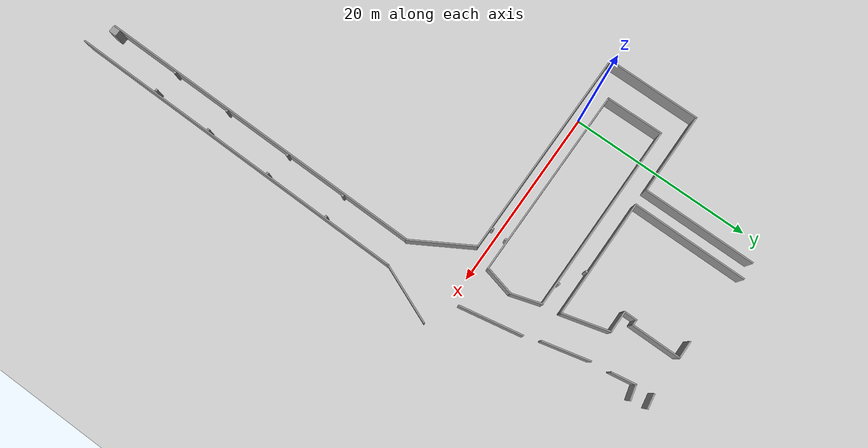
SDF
<sdf version="1.6">
 <world name="default">
  <model name="ground_plane">
   <static>1</static>
   <link name="link">
    <collision name="collision">
     <geometry><plane><normal>0 0 1</normal><size>100 100</size></plane></geometry>
     <surface><friction><ode><mu>100</mu><mu2>50</mu2></ode></friction></surface>
    </collision>
    <visual name="visual">
     <cast_shadows>0</cast_shadows>
     <geometry><plane><normal>0 0 1</normal><size>100 100</size></plane></geometry>
     <material>
      <script><uri>file://media/materials/scripts/gazebo.material</uri><name>Gazebo/Grey</name></script>
     </material>
    </visual>
   </link>
  </model>
  <model name="CMU">
   <pose>62.2844 43.535 0 0 -0 0</pose>
   <link name="Wall_1">
    <collision name="Wall_1_Collision">
     <geometry><box><size>23.5 0.15 2.5</size></box></geometry>
     <pose>0 0 1.25 0 -0 0</pose>
    </collision>
    <visual name="Wall_1_Visual">
     <pose>0 0 1.25 0 -0 0</pose>
     <geometry><box><size>23.5 0.15 2.5</size></box></geometry>
     <material>
      <script><uri>file://media/materials/scripts/gazebo.material</uri><name>Gazebo/Grey</name></script>
      <ambient>1 1 1 1</ambient>
     </material>
    </visual>
    <pose>-57.0241 -44.4197 0 0 -0 3.14159</pose>
   </link>
   <link name="Wall_100">
    <collision name="Wall_100_Collision">
     <geometry><box><size>21.25 0.15 2.5</size></box></geometry>
     <pose>0 0 1.25 0 -0 0</pose>
    </collision>
    <visual name="Wall_100_Visual">
     <pose>0 0 1.25 0 -0 0</pose>
     <geometry><box><size>21.25 0.15 2.5</size></box></geometry>
     <material>
      <script><uri>file://media/materials/scripts/gazebo.material</uri><name>Gazebo/Grey</name></script>
      <ambient>1 1 1 1</ambient>
     </material>
    </visual>
    <pose>-54.7083 -42.3708 0 0 -0 0</pose>
   </link>
   <link name="Wall_101">
    <collision name="Wall_101_Collision">
     <geometry><box><size>3.37379 0.15 2.5</size></box></geometry>
     <pose>0 0 1.25 0 -0 0</pose>
    </collision>
    <visual name="Wall_101_Visual">
     <pose>0 0 1.25 0 -0 0</pose>
     <geometry><box><size>3.37379 0.15 2.5</size></box></geometry>
     <material>
      <script><uri>file://media/materials/scripts/gazebo.material</uri><name>Gazebo/Grey</name></script>
      <ambient>1 1 1 1</ambient>
     </material>
    </visual>
    <pose>-43.7804 -40.7573 0 0 -0 1.33414</pose>
   </link>
   <link name="Wall_102">
    <collision name="Wall_102_Collision">
     <geometry><box><size>3.40257 0.15 2.5</size></box></geometry>
     <pose>0 0 1.25 0 -0 0</pose>
    </collision>
    <visual name="Wall_102_Visual">
     <pose>0 0 1.25 0 -0 0</pose>
     <geometry><box><size>3.40257 0.15 2.5</size></box></geometry>
     <material>
      <script><uri>file://media/materials/scripts/gazebo.material</uri><name>Gazebo/Grey</name></script>
      <ambient>1 1 1 1</ambient>
     </material>
    </visual>
    <pose>-43.8858 -37.6375 0 0 -0 1.87253</pose>
   </link>
   <link name="Wall_103">
    <collision name="Wall_103_Collision">
     <geometry><box><size>21.0858 0.15 2.5</size></box></geometry>
     <pose>0 0 1.25 0 -0 0</pose>
    </collision>
    <visual name="Wall_103_Visual">
     <pose>0 0 1.25 0 -0 0</pose>
     <geometry><box><size>21.0858 0.15 2.5</size></box></geometry>
     <material>
      <script><uri>file://media/materials/scripts/gazebo.material</uri><name>Gazebo/Grey</name></script>
      <ambient>1 1 1 1</ambient>
     </material>
    </visual>
    <pose>-54.837 -36.0847 0 0 -0 3.14159</pose>
   </link>
   <link name="Wall_108">
    <collision name="Wall_108_Collision">
     <geometry><box><size>6.95877 0.15 2.5</size></box></geometry>
     <pose>0 0 1.25 0 -0 0</pose>
    </collision>
    <visual name="Wall_108_Visual">
     <pose>0 0 1.25 0 -0 0</pose>
     <geometry><box><size>6.95877 0.15 2.5</size></box></geometry>
     <material>
      <script><uri>file://media/materials/scripts/gazebo.material</uri><name>Gazebo/Grey</name></script>
      <ambient>1 1 1 1</ambient>
     </material>
    </visual>
    <pose>-40.1556 -39.2515 0 0 0 -1.38616</pose>
   </link>
   <link name="Wall_110">
    <collision name="Wall_110_Collision">
     <geometry><box><size>5.17157 0.15 2.5</size></box></geometry>
     <pose>0 0 1.25 0 -0 0</pose>
    </collision>
    <visual name="Wall_110_Visual">
     <pose>0 0 1.25 0 -0 0</pose>
     <geometry><box><size>5.17157 0.15 2.5</size></box></geometry>
     <material>
      <script><uri>file://media/materials/scripts/gazebo.material</uri><name>Gazebo/Grey</name></script>
      <ambient>1 1 1 1</ambient>
     </material>
    </visual>
    <pose>-41.9731 -31.6882 0 0 0 -1.33705</pose>
   </link>
   <link name="Wall_2">
    <collision name="Wall_2_Collision">
     <geometry><box><size>10.5 0.15 2.5</size></box></geometry>
     <pose>0 0 1.25 0 -0 0</pose>
    </collision>
    <visual name="Wall_2_Visual">
     <pose>0 0 1.25 0 -0 0</pose>
     <geometry><box><size>10.5 0.15 2.5</size></box></geometry>
     <material>
      <script><uri>file://media/materials/scripts/gazebo.material</uri><name>Gazebo/Grey</name></script>
      <ambient>1 1 1 1</ambient>
     </material>
    </visual>
    <pose>-68.6991 -39.2447 0 0 -0 1.5708</pose>
   </link>
   <link name="Wall_226">
    <collision name="Wall_226_Collision">
     <geometry><box><size>7.24322 0.15 2.5</size></box></geometry>
     <pose>0 0 1.25 0 -0 0</pose>
    </collision>
    <visual name="Wall_226_Visual">
     <pose>0 0 1.25 0 -0 0</pose>
     <geometry><box><size>7.24322 0.15 2.5</size></box></geometry>
     <material>
      <script><uri>file://media/materials/scripts/gazebo.material</uri><name>Gazebo/Grey</name></script>
      <ambient>1 1 1 1</ambient>
     </material>
    </visual>
    <pose>-43.5508 -47.4766 0 0 0 -1.03906</pose>
   </link>
   <link name="Wall_227">
    <collision name="Wall_227_Collision">
     <geometry><box><size>37.1315 0.15 2.5</size></box></geometry>
     <pose>0 0 1.25 0 -0 0</pose>
    </collision>
    <visual name="Wall_227_Visual">
     <pose>0 0 1.25 0 -0 0</pose>
     <geometry><box><size>37.1315 0.15 2.5</size></box></geometry>
     <material>
      <script><uri>file://media/materials/scripts/gazebo.material</uri><name>Gazebo/Grey</name></script>
      <ambient>1 1 1 1</ambient>
     </material>
    </visual>
    <pose>-42.0602 -69.0227 0 0 0 -1.58411</pose>
   </link>
   <link name="Wall_229">
    <collision name="Wall_229_Collision">
     <geometry><box><size>6.74296 0.15 2.5</size></box></geometry>
     <pose>0 0 1.25 0 -0 0</pose>
    </collision>
    <visual name="Wall_229_Visual">
     <pose>0 0 1.25 0 -0 0</pose>
     <geometry><box><size>6.74296 0.15 2.5</size></box></geometry>
     <material>
      <script><uri>file://media/materials/scripts/gazebo.material</uri><name>Gazebo/Grey</name></script>
      <ambient>1 1 1 1</ambient>
     </material>
    </visual>
    <pose>-37.4764 -47.4264 0 0 0 -1.96343</pose>
   </link>
   <link name="Wall_230">
    <collision name="Wall_230_Collision">
     <geometry><box><size>38.6696 0.15 2.5</size></box></geometry>
     <pose>0 0 1.25 0 -0 0</pose>
    </collision>
    <visual name="Wall_230_Visual">
     <pose>0 0 1.25 0 -0 0</pose>
     <geometry><box><size>38.6696 0.15 2.5</size></box></geometry>
     <material>
      <script><uri>file://media/materials/scripts/gazebo.material</uri><name>Gazebo/Grey</name></script>
      <ambient>1 1 1 1</ambient>
     </material>
    </visual>
    <pose>-39.0146 -69.7302 0 0 0 -1.58517</pose>
   </link>
   <link name="Wall_3">
    <collision name="Wall_3_Collision">
     <geometry><box><size>9.25 0.15 2.5</size></box></geometry>
     <pose>0 0 1.25 0 -0 0</pose>
    </collision>
    <visual name="Wall_3_Visual">
     <pose>0 0 1.25 0 -0 0</pose>
     <geometry><box><size>9.25 0.15 2.5</size></box></geometry>
     <material>
      <script><uri>file://media/materials/scripts/gazebo.material</uri><name>Gazebo/Grey</name></script>
      <ambient>1 1 1 1</ambient>
     </material>
    </visual>
    <pose>-64.1491 -34.0697 0 0 -0 0</pose>
   </link>
   <link name="Wall_4">
    <collision name="Wall_4_Collision">
     <geometry><box><size>12.5 0.15 2.5</size></box></geometry>
     <pose>0 0 1.25 0 -0 0</pose>
    </collision>
    <visual name="Wall_4_Visual">
     <pose>0 0 1.25 0 -0 0</pose>
     <geometry><box><size>12.5 0.15 2.5</size></box></geometry>
     <material>
      <script><uri>file://media/materials/scripts/gazebo.material</uri><name>Gazebo/Grey</name></script>
      <ambient>1 1 1 1</ambient>
     </material>
    </visual>
    <pose>-59.5991 -27.8947 0 0 -0 1.5708</pose>
   </link>
   <link name="Wall_57">
    <collision name="Wall_57_Collision">
     <geometry><box><size>2.69694 0.15 2.5</size></box></geometry>
     <pose>0 0 1.25 0 -0 0</pose>
    </collision>
    <visual name="Wall_57_Visual">
     <pose>0 0 1.25 0 -0 0</pose>
     <geometry><box><size>2.69694 0.15 2.5</size></box></geometry>
     <material>
      <script><uri>file://media/materials/scripts/gazebo.material</uri><name>Gazebo/Grey</name></script>
      <ambient>1 1 1 1</ambient>
     </material>
    </visual>
    <pose>-43.0321 -25.7734 0 0 -0 1.73595</pose>
   </link>
   <link name="Wall_58">
    <collision name="Wall_58_Collision">
     <geometry><box><size>1.72976 0.15 2.5</size></box></geometry>
     <pose>0 0 1.25 0 -0 0</pose>
    </collision>
    <visual name="Wall_58_Visual">
     <pose>0 0 1.25 0 -0 0</pose>
     <geometry><box><size>1.72976 0.15 2.5</size></box></geometry>
     <material>
      <script><uri>file://media/materials/scripts/gazebo.material</uri><name>Gazebo/Grey</name></script>
      <ambient>1 1 1 1</ambient>
     </material>
    </visual>
    <pose>-42.4738 -24.3312 0 0 -0 0.237836</pose>
   </link>
   <link name="Wall_60">
    <collision name="Wall_60_Collision">
     <geometry><box><size>1.61088 0.15 2.5</size></box></geometry>
     <pose>0 0 1.25 0 -0 0</pose>
    </collision>
    <visual name="Wall_60_Visual">
     <pose>0 0 1.25 0 -0 0</pose>
     <geometry><box><size>1.61088 0.15 2.5</size></box></geometry>
     <material>
      <script><uri>file://media/materials/scripts/gazebo.material</uri><name>Gazebo/Grey</name></script>
      <ambient>1 1 1 1</ambient>
     </material>
    </visual>
    <pose>-42.753 -22.4935 0 0 -0 0.159913</pose>
   </link>
   <link name="Wall_86">
    <collision name="Wall_86_Collision">
     <geometry><box><size>12.7071 0.15 2.5</size></box></geometry>
     <pose>0 0 1.25 0 -0 0</pose>
    </collision>
    <visual name="Wall_86_Visual">
     <pose>0 0 1.25 0 -0 0</pose>
     <geometry><box><size>12.7071 0.15 2.5</size></box></geometry>
     <material>
      <script><uri>file://media/materials/scripts/gazebo.material</uri><name>Gazebo/Grey</name></script>
      <ambient>1 1 1 1</ambient>
     </material>
    </visual>
    <pose>-57.7821 -27.8544 0 0 0 -1.57276</pose>
   </link>
   <link name="Wall_87">
    <collision name="Wall_87_Collision">
     <geometry><box><size>13.25 0.15 2.5</size></box></geometry>
     <pose>0 0 1.25 0 -0 0</pose>
    </collision>
    <visual name="Wall_87_Visual">
     <pose>0 0 1.25 0 -0 0</pose>
     <geometry><box><size>13.25 0.15 2.5</size></box></geometry>
     <material>
      <script><uri>file://media/materials/scripts/gazebo.material</uri><name>Gazebo/Grey</name></script>
      <ambient>1 1 1 1</ambient>
     </material>
    </visual>
    <pose>-51.2444 -34.1329 0 0 -0 0</pose>
   </link>
   <link name="Wall_88">
    <collision name="Wall_88_Collision">
     <geometry><box><size>5.25 0.15 2.5</size></box></geometry>
     <pose>0 0 1.25 0 -0 0</pose>
    </collision>
    <visual name="Wall_88_Visual">
     <pose>0 0 1.25 0 -0 0</pose>
     <geometry><box><size>5.25 0.15 2.5</size></box></geometry>
     <material>
      <script><uri>file://media/materials/scripts/gazebo.material</uri><name>Gazebo/Grey</name></script>
      <ambient>1 1 1 1</ambient>
     </material>
    </visual>
    <pose>-45.3544 -31.6698 0 0 -0 1.8326</pose>
   </link>
   <link name="Wall_89">
    <collision name="Wall_89_Collision">
     <geometry><box><size>2.5 0.15 2.5</size></box></geometry>
     <pose>0 0 1.25 0 -0 0</pose>
    </collision>
    <visual name="Wall_89_Visual">
     <pose>0 0 1.25 0 -0 0</pose>
     <geometry><box><size>2.5 0.15 2.5</size></box></geometry>
     <material>
      <script><uri>file://media/materials/scripts/gazebo.material</uri><name>Gazebo/Grey</name></script>
      <ambient>1 1 1 1</ambient>
     </material>
    </visual>
    <pose>-47.1894 -29.2067 0 0 -0 3.14159</pose>
   </link>
   <link name="Wall_90">
    <collision name="Wall_90_Collision">
     <geometry><box><size>1.5 0.15 2.5</size></box></geometry>
     <pose>0 0 1.25 0 -0 0</pose>
    </collision>
    <visual name="Wall_90_Visual">
     <pose>0 0 1.25 0 -0 0</pose>
     <geometry><box><size>1.5 0.15 2.5</size></box></geometry>
     <material>
      <script><uri>file://media/materials/scripts/gazebo.material</uri><name>Gazebo/Grey</name></script>
      <ambient>1 1 1 1</ambient>
     </material>
    </visual>
    <pose>-48.3644 -28.5317 0 0 -0 1.5708</pose>
   </link>
   <link name="Wall_91">
    <collision name="Wall_91_Collision">
     <geometry><box><size>0.75 0.15 2.5</size></box></geometry>
     <pose>0 0 1.25 0 -0 0</pose>
    </collision>
    <visual name="Wall_91_Visual">
     <pose>0 0 1.25 0 -0 0</pose>
     <geometry><box><size>0.75 0.15 2.5</size></box></geometry>
     <material>
      <script><uri>file://media/materials/scripts/gazebo.material</uri><name>Gazebo/Grey</name></script>
      <ambient>1 1 1 1</ambient>
     </material>
    </visual>
    <pose>-48.0644 -27.8567 0 0 -0 0</pose>
   </link>
   <link name="Wall_92">
    <collision name="Wall_92_Collision">
     <geometry><box><size>5.5 0.15 2.5</size></box></geometry>
     <pose>0 0 1.25 0 -0 0</pose>
    </collision>
    <visual name="Wall_92_Visual">
     <pose>0 0 1.25 0 -0 0</pose>
     <geometry><box><size>5.5 0.15 2.5</size></box></geometry>
     <material>
      <script><uri>file://media/materials/scripts/gazebo.material</uri><name>Gazebo/Grey</name></script>
      <ambient>1 1 1 1</ambient>
     </material>
    </visual>
    <pose>-47.7644 -25.1817 0 0 -0 1.5708</pose>
   </link>
   <link name="Wall_93">
    <collision name="Wall_93_Collision">
     <geometry><box><size>2 0.15 2.5</size></box></geometry>
     <pose>0 0 1.25 0 -0 0</pose>
    </collision>
    <visual name="Wall_93_Visual">
     <pose>0 0 1.25 0 -0 0</pose>
     <geometry><box><size>2 0.15 2.5</size></box></geometry>
     <material>
      <script><uri>file://media/materials/scripts/gazebo.material</uri><name>Gazebo/Grey</name></script>
      <ambient>1 1 1 1</ambient>
     </material>
    </visual>
    <pose>-48.6894 -22.5067 0 0 -0 3.14159</pose>
   </link>
   <link name="Wall_99">
    <collision name="Wall_99_Collision">
     <geometry><box><size>6.38974 0.15 2.5</size></box></geometry>
     <pose>0 0 1.25 0 -0 0</pose>
    </collision>
    <visual name="Wall_99_Visual">
     <pose>0 0 1.25 0 -0 0</pose>
     <geometry><box><size>6.38974 0.15 2.5</size></box></geometry>
     <material>
      <script><uri>file://media/materials/scripts/gazebo.material</uri><name>Gazebo/Grey</name></script>
      <ambient>1 1 1 1</ambient>
     </material>
    </visual>
    <pose>-65.2816 -39.2045 0 0 0 -1.56334</pose>
   </link>
   <static>1</static>
  </model>
  <model name="unit_box_0_clone">
   <pose>20.4656 -21.6522 1.07512 0 0 -0.013448</pose>
   <link name="link">
    <inertial>
     <mass>1</mass>
     <inertia>
      <ixx>0.166667</ixx>
      <ixy>0</ixy>
      <ixz>0</ixz>
      <iyy>0.166667</iyy>
      <iyz>0</iyz>
      <izz>0.166667</izz>
     </inertia>
    </inertial>
    <collision name="collision"><geometry><box><size>0.230557 0.245067 2.15023</size></box></geometry></collision>
    <visual name="visual">
     <geometry><box><size>0.230557 0.245067 2.15023</size></box></geometry>
     <material>
      <script><name>Gazebo/Grey</name><uri>file://media/materials/scripts/gazebo.material</uri></script>
     </material>
    </visual>
   </link>
  </model>
  <model name="unit_box_0_clone_clone">
   <pose>20.5583 -14.6849 1.07512 0 0 -0.013313</pose>
   <link name="link">
    <inertial>
     <mass>1</mass>
     <inertia>
      <ixx>0.166667</ixx>
      <ixy>0</ixy>
      <ixz>0</ixz>
      <iyy>0.166667</iyy>
      <iyz>0</iyz>
      <izz>0.166667</izz>
     </inertia>
    </inertial>
    <collision name="collision"><geometry><box><size>0.230557 0.245067 2.15023</size></box></geometry></collision>
    <visual name="visual">
     <geometry><box><size>0.230557 0.245067 2.15023</size></box></geometry>
     <material>
      <script><name>Gazebo/Grey</name><uri>file://media/materials/scripts/gazebo.material</uri></script>
     </material>
    </visual>
   </link>
  </model>
  <model name="unit_box_0_clone_clone_0">
   <pose>20.4259 -43.6681 1.25089 0 2e-06 1.5608</pose>
   <link name="link">
    <inertial>
     <mass>1</mass>
     <inertia>
      <ixx>0.166667</ixx>
      <ixy>0</ixy>
      <ixz>0</ixz>
      <iyy>0.166667</iyy>
      <iyz>0</iyz>
      <izz>0.166667</izz>
     </inertia>
    </inertial>
    <collision name="collision"><geometry><box><size>0.865018 0.727249 2.50177</size></box></geometry></collision>
    <visual name="visual">
     <geometry><box><size>0.865018 0.727249 2.50177</size></box></geometry>
     <material>
      <script><name>Gazebo/Grey</name><uri>file://media/materials/scripts/gazebo.material</uri></script>
     </material>
    </visual>
   </link>
  </model>
  <model name="unit_box_0_clone_clone_1">
   <pose>20.3861 -29.3621 1.07512 2e-06 1e-06 -0.013266</pose>
   <link name="link">
    <inertial>
     <mass>1</mass>
     <inertia>
      <ixx>0.166667</ixx>
      <ixy>0</ixy>
      <ixz>0</ixz>
      <iyy>0.166667</iyy>
      <iyz>0</iyz>
      <izz>0.166667</izz>
     </inertia>
    </inertial>
    <collision name="collision"><geometry><box><size>0.230557 0.245067 2.15023</size></box></geometry></collision>
    <visual name="visual">
     <geometry><box><size>0.230557 0.245067 2.15023</size></box></geometry>
     <material>
      <script><name>Gazebo/Grey</name><uri>file://media/materials/scripts/gazebo.material</uri></script>
     </material>
    </visual>
   </link>
  </model>
  <model name="unit_box_0_clone_clone_2">
   <pose>23.2241 -14.7845 1.07512 3e-06 -4e-06 -0.012835</pose>
   <link name="link">
    <inertial>
     <mass>1</mass>
     <inertia>
      <ixx>0.166667</ixx>
      <ixy>0</ixy>
      <ixz>0</ixz>
      <iyy>0.166667</iyy>
      <iyz>0</iyz>
      <izz>0.166667</izz>
     </inertia>
    </inertial>
    <collision name="collision"><geometry><box><size>0.230557 0.245067 2.15023</size></box></geometry></collision>
    <visual name="visual">
     <geometry><box><size>0.230557 0.245067 2.15023</size></box></geometry>
     <material>
      <script><name>Gazebo/Grey</name><uri>file://media/materials/scripts/gazebo.material</uri></script>
     </material>
    </visual>
   </link>
  </model>
  <model name="unit_box_0_clone_clone_3">
   <pose>23.1307 -22.1108 1.07512 -4e-06 7e-06 -0.012958</pose>
   <link name="link">
    <inertial>
     <mass>1</mass>
     <inertia>
      <ixx>0.166667</ixx>
      <ixy>0</ixy>
      <ixz>0</ixz>
      <iyy>0.166667</iyy>
      <iyz>0</iyz>
      <izz>0.166667</izz>
     </inertia>
    </inertial>
    <collision name="collision"><geometry><box><size>0.230557 0.245067 2.15023</size></box></geometry></collision>
    <visual name="visual">
     <geometry><box><size>0.230557 0.245067 2.15023</size></box></geometry>
     <material>
      <script><name>Gazebo/Grey</name><uri>file://media/materials/scripts/gazebo.material</uri></script>
     </material>
    </visual>
   </link>
  </model>
  <model name="unit_box_0_clone_clone_4">
   <pose>23.0294 -29.6629 1.07512 6e-06 -0 -0.012684</pose>
   <link name="link">
    <inertial>
     <mass>1</mass>
     <inertia>
      <ixx>0.166667</ixx>
      <ixy>0</ixy>
      <ixz>0</ixz>
      <iyy>0.166667</iyy>
      <iyz>0</iyz>
      <izz>0.166667</izz>
     </inertia>
    </inertial>
    <collision name="collision"><geometry><box><size>0.230557 0.245067 2.15023</size></box></geometry></collision>
    <visual name="visual">
     <geometry><box><size>0.230557 0.245067 2.15023</size></box></geometry>
     <material>
      <script><name>Gazebo/Grey</name><uri>file://media/materials/scripts/gazebo.material</uri></script>
     </material>
    </visual>
   </link>
  </model>
  <model name="unit_box_0_clone_clone_5">
   <pose>22.8191 -36.4465 1.07512 0 -4e-06 -0.013699</pose>
   <link name="link">
    <inertial>
     <mass>1</mass>
     <inertia>
      <ixx>0.166667</ixx>
      <ixy>0</ixy>
      <ixz>0</ixz>
      <iyy>0.166667</iyy>
      <iyz>0</iyz>
      <izz>0.166667</izz>
     </inertia>
    </inertial>
    <collision name="collision"><geometry><box><size>0.230557 0.245067 2.15023</size></box></geometry></collision>
    <visual name="visual">
     <geometry><box><size>0.230557 0.245067 2.15023</size></box></geometry>
     <material>
      <script><name>Gazebo/Grey</name><uri>file://media/materials/scripts/gazebo.material</uri></script>
     </material>
    </visual>
   </link>
  </model>
  <model name="unit_box_0_clone_clone_6">
   <pose>20.2736 -36.0687 1.07512 0 0 -0.013313</pose>
   <link name="link">
    <inertial>
     <mass>1</mass>
     <inertia>
      <ixx>0.166667</ixx>
      <ixy>0</ixy>
      <ixz>0</ixz>
      <iyy>0.166667</iyy>
      <iyz>0</iyz>
      <izz>0.166667</izz>
     </inertia>
    </inertial>
    <collision name="collision"><geometry><box><size>0.230557 0.245067 2.15023</size></box></geometry></collision>
    <visual name="visual">
     <geometry><box><size>0.230557 0.245067 2.15023</size></box></geometry>
     <material>
      <script><name>Gazebo/Grey</name><uri>file://media/materials/scripts/gazebo.material</uri></script>
     </material>
    </visual>
   </link>
  </model>
  <model name="unit_box_0_clone_clone_18">
   <pose>12.769 9.19181 1.07512 0 0 -0.013413</pose>
   <link name="link">
    <inertial>
     <mass>1</mass>
     <inertia>
      <ixx>0.166667</ixx>
      <ixy>0</ixy>
      <ixz>0</ixz>
      <iyy>0.166667</iyy>
      <iyz>0</iyz>
      <izz>0.166667</izz>
     </inertia>
    </inertial>
    <collision name="collision"><geometry><box><size>0.230557 0.245067 2.15023</size></box></geometry></collision>
    <visual name="visual">
     <geometry><box><size>0.230557 0.245067 2.15023</size></box></geometry>
     <material>
      <script><name>Gazebo/Grey</name><uri>file://media/materials/scripts/gazebo.material</uri></script>
     </material>
    </visual>
   </link>
  </model>
  <model name="unit_box_0_clone_clone_19">
   <pose>14.6409 -0.687064 1.07512 1e-06 -0 -0.00024</pose>
   <link name="link">
    <inertial>
     <mass>1</mass>
     <inertia>
      <ixx>0.166667</ixx>
      <ixy>0</ixy>
      <ixz>0</ixz>
      <iyy>0.166667</iyy>
      <iyz>0</iyz>
      <izz>0.166667</izz>
     </inertia>
    </inertial>
    <collision name="collision"><geometry><box><size>0.230557 0.245067 2.15023</size></box></geometry></collision>
    <visual name="visual">
     <geometry><box><size>0.230557 0.245067 2.15023</size></box></geometry>
     <material>
      <script><name>Gazebo/Grey</name><uri>file://media/materials/scripts/gazebo.material</uri></script>
     </material>
    </visual>
   </link>
  </model>
  <model name="unit_box_0_clone_clone_20">
   <pose>14.776 0.966707 1.07512 0 -0 1e-06</pose>
   <link name="link">
    <inertial>
     <mass>1</mass>
     <inertia>
      <ixx>0.166667</ixx>
      <ixy>0</ixy>
      <ixz>0</ixz>
      <iyy>0.166667</iyy>
      <iyz>0</iyz>
      <izz>0.166667</izz>
     </inertia>
    </inertial>
    <collision name="collision"><geometry><box><size>0.230557 0.245067 2.15023</size></box></geometry></collision>
    <visual name="visual">
     <geometry><box><size>0.230557 0.245067 2.15023</size></box></geometry>
     <material>
      <script><name>Gazebo/Grey</name><uri>file://media/materials/scripts/gazebo.material</uri></script>
     </material>
    </visual>
   </link>
  </model>
  <model name="unit_box_0_clone_clone_21">
   <pose>15.3269 7.64792 1.07512 -3e-06 -7e-06 -0.000238</pose>
   <link name="link">
    <inertial>
     <mass>1</mass>
     <inertia>
      <ixx>0.166667</ixx>
      <ixy>0</ixy>
      <ixz>0</ixz>
      <iyy>0.166667</iyy>
      <iyz>0</iyz>
      <izz>0.166667</izz>
     </inertia>
    </inertial>
    <collision name="collision"><geometry><box><size>0.230557 0.245067 2.15023</size></box></geometry></collision>
    <visual name="visual">
     <geometry><box><size>0.230557 0.245067 2.15023</size></box></geometry>
     <material>
      <script><name>Gazebo/Grey</name><uri>file://media/materials/scripts/gazebo.material</uri></script>
     </material>
    </visual>
   </link>
  </model>
 </world>
</sdf>
